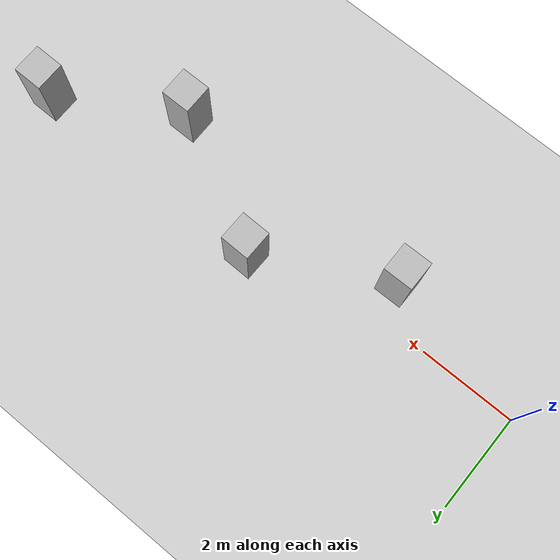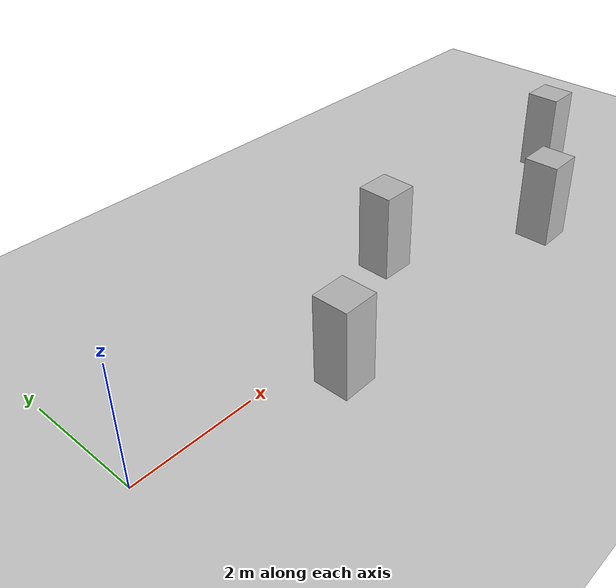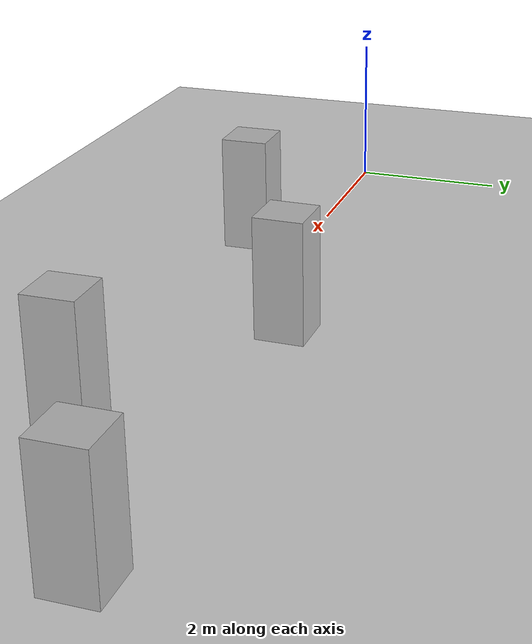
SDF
<?xml version="1.0"?>
<sdf version="1.6">
  <world name="v2-04g-r4-static-s5068">
    <gravity>0 0 -9.81</gravity>
    <physics name="v2_deterministic" type="ode">
      <max_step_size>0.002</max_step_size>
      <real_time_update_rate>500</real_time_update_rate>
    </physics>
    <include>
      <uri>model://sun</uri>
    </include>
    <include>
      <uri>model://ground_plane</uri>
    </include>
    <model name="pillar-1">
      <static>true</static>
      <pose>3.162382841 -0.677247544 0.750000000 0 0 0.012168049</pose>
      <link name="link">
        <collision name="collision">
          <geometry>
            <box>
              <size>0.600000 0.600000 1.500000</size>
            </box>
          </geometry>
        </collision>
        <visual name="visual">
          <geometry>
            <box>
              <size>0.600000 0.600000 1.500000</size>
            </box>
          </geometry>
        </visual>
      </link>
    </model>
    <model name="pillar-2">
      <static>true</static>
      <pose>5.703843003 0.697980635 0.750000000 0 0 -0.013858951</pose>
      <link name="link">
        <collision name="collision">
          <geometry>
            <box>
              <size>0.600000 0.600000 1.500000</size>
            </box>
          </geometry>
        </collision>
        <visual name="visual">
          <geometry>
            <box>
              <size>0.600000 0.600000 1.500000</size>
            </box>
          </geometry>
        </visual>
      </link>
    </model>
    <model name="pillar-3">
      <static>true</static>
      <pose>8.305067851 -0.728268629 0.750000000 0 0 0.005645301</pose>
      <link name="link">
        <collision name="collision">
          <geometry>
            <box>
              <size>0.600000 0.600000 1.500000</size>
            </box>
          </geometry>
        </collision>
        <visual name="visual">
          <geometry>
            <box>
              <size>0.600000 0.600000 1.500000</size>
            </box>
          </geometry>
        </visual>
      </link>
    </model>
    <model name="pillar-4">
      <static>true</static>
      <pose>10.682863027 0.648422694 0.750000000 0 0 -0.003642042</pose>
      <link name="link">
        <collision name="collision">
          <geometry>
            <box>
              <size>0.600000 0.600000 1.500000</size>
            </box>
          </geometry>
        </collision>
        <visual name="visual">
          <geometry>
            <box>
              <size>0.600000 0.600000 1.500000</size>
            </box>
          </geometry>
        </visual>
      </link>
    </model>
  </world>
</sdf>
